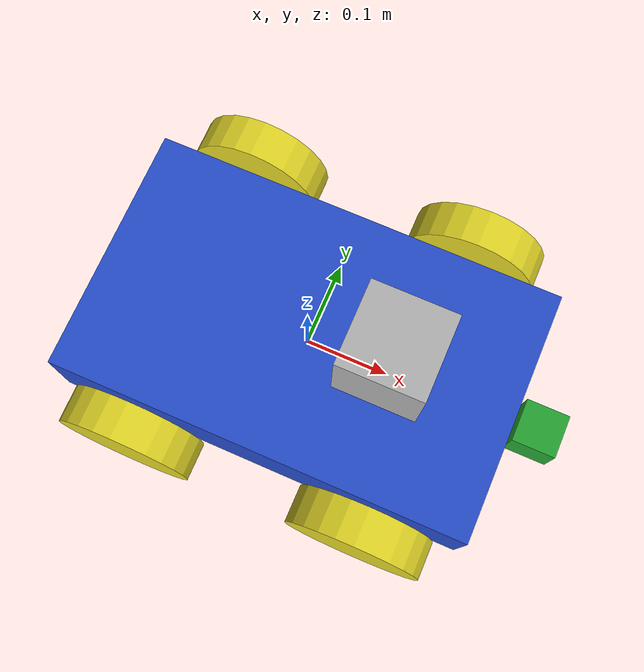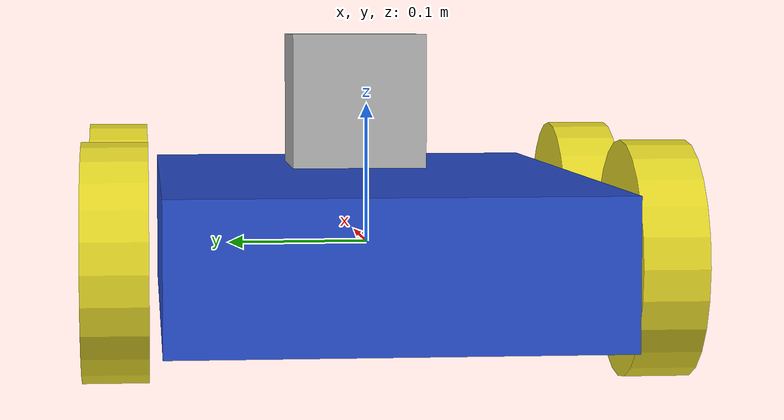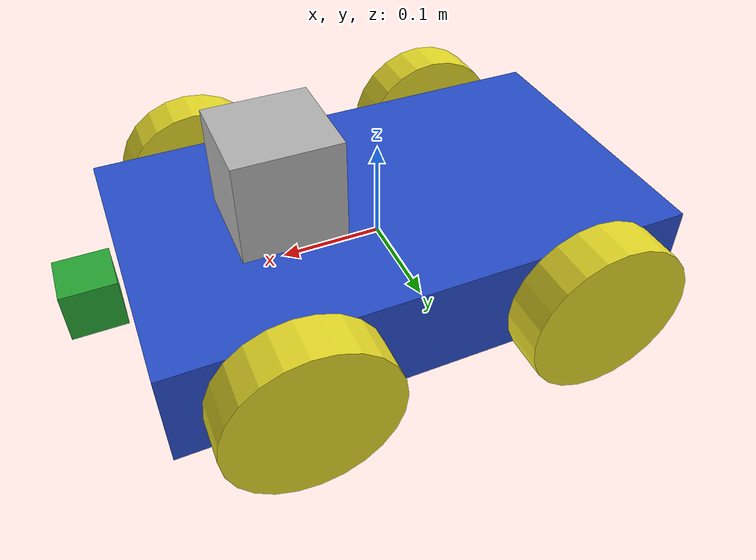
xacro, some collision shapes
<?xml version='1.0'?>

<robot name="my_robot" xmlns:xacro="http://www.ros.org/wiki/xacro">
<xacro:include filename="$(find my_robot)/urdf/my_robot.gazebo" />

  <link name="robot_footprint"></link>

  <joint name="robot_footprint_joint" type="fixed">
    <origin xyz="0 0 0" rpy="0 0 0" />
    <parent link="robot_footprint"/>
    <child link="chassis" />
  </joint>

  <link name='chassis'>
    <pose>0 0 0.1 0 0 0</pose>

    <inertial>
      <mass value="15.0"/>
      <origin xyz="0.0 0 0" rpy=" 0 0 0"/>
      <inertia
          ixx="0.1" ixy="0" ixz="0"
          iyy="0.1" iyz="0"
          izz="0.1"
      />
    </inertial>

    <collision name='collision'>
      <origin xyz="0 0 0" rpy=" 0 0 0"/>
      <geometry>
        <box size=".5 .3 .1"/>
      </geometry>
    </collision>

    <visual name='chassis_visual'>
      <origin xyz="0 0 0" rpy=" 0 0 0"/>
      <geometry>
        <box size=".5 .3 .1"/>
      </geometry>
    </visual>

  </link>

<link name='left_wheel_front'>

    <inertial>
      <mass value="5.0"/>
      <origin xyz="0.0 0 0" rpy=" 0 1.5707 1.5707"/>
      <inertia
          ixx="0.1" ixy="0" ixz="0"
          iyy="0.1" iyz="0"
          izz="0.1"
      />
    </inertial>

    <collision name='left_wheel_front_collision'>
      <origin xyz="0 0 0" rpy=" 0 1.5707 1.5707"/>
      <geometry>
        <cylinder radius=".08" length="0.044"/>
      </geometry>
    </collision>

    <visual name='left_wheel_front_visual'>
      <origin xyz="0 0 0" rpy=" 0 1.5707 1.5707"/>
      <geometry>
        <cylinder radius=".08" length="0.044"/>
      </geometry>
    </visual>

  </link>

<link name='left_wheel_back'>

    <inertial>
      <mass value="5.0"/>
      <origin xyz="0.0 0 0" rpy=" 0 1.5707 1.5707"/>
      <inertia
          ixx="0.1" ixy="0" ixz="0"
          iyy="0.1" iyz="0"
          izz="0.1"
      />
    </inertial>

    <collision name='left_wheel_back_collision'>
      <origin xyz="0 0 0" rpy=" 0 1.5707 1.5707"/>
      <geometry>
        <cylinder radius=".08" length="0.044"/>
      </geometry>
    </collision>

    <visual name='left_wheel_back_visual'>
      <origin xyz="0 0 0" rpy=" 0 1.5707 1.5707"/>
      <geometry>
        <cylinder radius=".08" length="0.044"/>
      </geometry>
    </visual>

  </link>

<link name='right_wheel_front'>

    <inertial>
      <mass value="5.0"/>
      <origin xyz="0.0 0 0" rpy=" 0 1.5707 1.5707"/>
      <inertia
          ixx="0.1" ixy="0" ixz="0"
          iyy="0.1" iyz="0"
          izz="0.1"
      />
    </inertial>

    <collision name='right_wheel_front_collision'>
      <origin xyz="0 0 0" rpy=" 0 1.5707 1.5707"/>
      <geometry>
        <cylinder radius=".08" length="0.044"/>
      </geometry>
    </collision>

    <visual name='right_wheel_front_visual'>
      <origin xyz="0 0 0" rpy=" 0 1.5707 1.5707"/>
      <geometry>
        <cylinder radius=".08" length="0.044"/>
      </geometry>
    </visual>

  </link>

<link name='right_wheel_back'>

    <inertial>
      <mass value="5.0"/>
      <origin xyz="0.0 0 0" rpy=" 0 1.5707 1.5707"/>
      <inertia
          ixx="0.1" ixy="0" ixz="0"
          iyy="0.1" iyz="0"
          izz="0.1"
      />
    </inertial>

    <collision name='right_wheel_back_collision'>
      <origin xyz="0 0 0" rpy=" 0 1.5707 1.5707"/>
      <geometry>
        <cylinder radius=".08" length="0.044"/>
      </geometry>
    </collision>

    <visual name='right_wheel_back_visual'>
      <origin xyz="0 0 0" rpy=" 0 1.5707 1.5707"/>
      <geometry>
        <cylinder radius=".08" length="0.044"/>
      </geometry>
    </visual>

  </link>

<link name='camera'>

    <inertial>
      <mass value="0.1"/>
      <origin xyz="0.0 0 0" rpy=" 0 0 0"/>
      <inertia
          ixx="1e-6" ixy="0" ixz="0"
          iyy="1e-6" iyz="0"
          izz="1e-6"
      />
     <box_inertia m="0.1" x="0.05" y="0.05" z="0.05"/>
    </inertial>

    <collision name='camera_collision'>
      <origin xyz="0 0 0" rpy=" 0 0 0"/>
      <geometry>
        <box size="0.05 0.05 0.05"/>
      </geometry>
    </collision>

    <visual name='camera_visual'>
      <origin xyz="0 0 0" rpy=" 0 0 0"/>
      <geometry>
        <box size="0.05 0.05 0.05"/>
      </geometry>
    </visual>

  </link>

<link name='hokuyo'>

    <inertial>
      <mass value="1e-5"/>
      <origin xyz="0.0 0 0" rpy=" 0 0 0"/>
      <inertia
          ixx="1e-6" ixy="0" ixz="0"
          iyy="1e-6" iyz="0"
          izz="1e-6"
      />
    </inertial>

    <collision name='hokuyo_collision'>
      <origin xyz="0 0 0" rpy=" 0 0 0"/>
      <geometry>
        <box size="0.1 0.1 0.1"/>
      </geometry>
    </collision>

    <visual name='hokuyo_visual'>
      <origin xyz="0 0 0" rpy=" 0 0 0"/>
      <geometry>
        <mesh filename="package://my_robot/meshes/hokuyo.dae"/>
      </geometry>
    </visual>

  </link>

<joint type="continuous" name="left_wheel_front_hinge">
    <origin xyz="0.14 0.18 0" rpy="0 0 0"/>
    <child link="left_wheel_front"/>
    <parent link="chassis"/>
    <axis xyz="0 1 0" rpy="0 0 0"/>
    <limit effort="10000" velocity="1000"/>
    <dynamics damping="1.0" friction="1.0"/>
  </joint>

  <joint type="continuous" name="left_wheel_back_hinge">
    <origin xyz="-0.14 0.18 0" rpy="0 0 0"/>
    <child link="left_wheel_back"/>
    <parent link="chassis"/>
    <axis xyz="0 1 0" rpy="0 0 0"/>
    <limit effort="10000" velocity="1000"/>
    <dynamics damping="1.0" friction="1.0"/>
  </joint>

  <joint type="continuous" name="right_wheel_front_hinge">
    <origin xyz="0.14 -0.18 0" rpy="0 0 0"/>
    <child link="right_wheel_front"/>
    <parent link="chassis"/>
    <axis xyz="0 1 0" rpy="0 0 0"/>
    <limit effort="10000" velocity="1000"/>
    <dynamics damping="1.0" friction="1.0"/>
  </joint>

  <joint type="continuous" name="right_wheel_back_hinge">
    <origin xyz="-0.14 -0.18 0" rpy="0 0 0"/>
    <child link="right_wheel_back"/>
    <parent link="chassis"/>
    <axis xyz="0 1 0" rpy="0 0 0"/>
    <limit effort="10000" velocity="1000"/>
    <dynamics damping="1.0" friction="1.0"/>
  </joint>

  <joint type="fixed" name="camera_joint">
    <origin xyz="0.28 0 0.02" rpy="0 0 0"/>
    <child link="camera"/>
    <parent link="chassis"/>
    <axis xyz="0 1 0" rpy="0 0 0"/>
  </joint>

  <joint type="fixed" name="hokuyo_joint">
    <origin xyz="0.1 0 0.1" rpy="0 0 0"/>
    <child link="hokuyo"/>
    <parent link="chassis"/>
    <axis xyz="0 1 0" rpy="0 0 0"/>
  </joint>

  <gazebo reference="chassis">
    <material>Gazebo/Blue</material>
  </gazebo>

  <gazebo reference="left_wheel_front">
    <material>Gazebo/Yellow</material>
  </gazebo>

  <gazebo reference="left_wheel_back">
    <material>Gazebo/Yellow</material>
  </gazebo>

  <gazebo reference="right_wheel_front">
    <material>Gazebo/Yellow</material>
  </gazebo>

  <gazebo reference="right_wheel_back">
    <material>Gazebo/Yellow</material>
  </gazebo>

  <gazebo reference="camera">
    <material>Gazebo/Green</material>
  </gazebo>

</robot>
